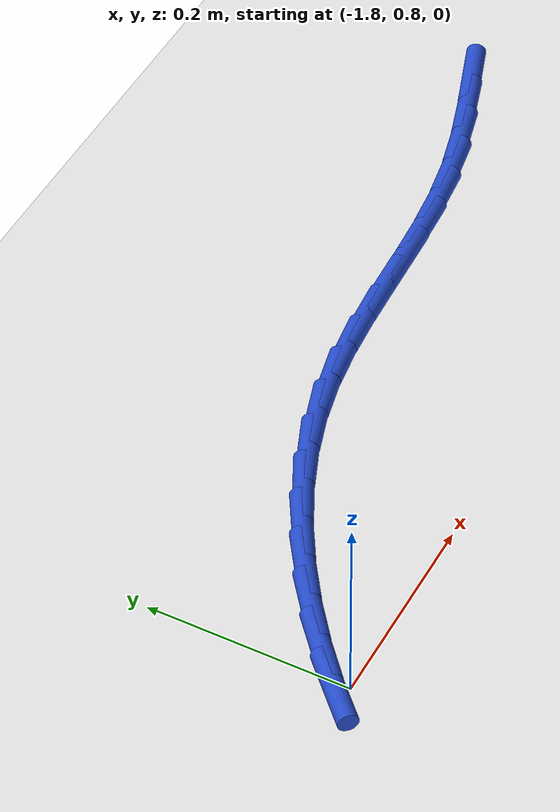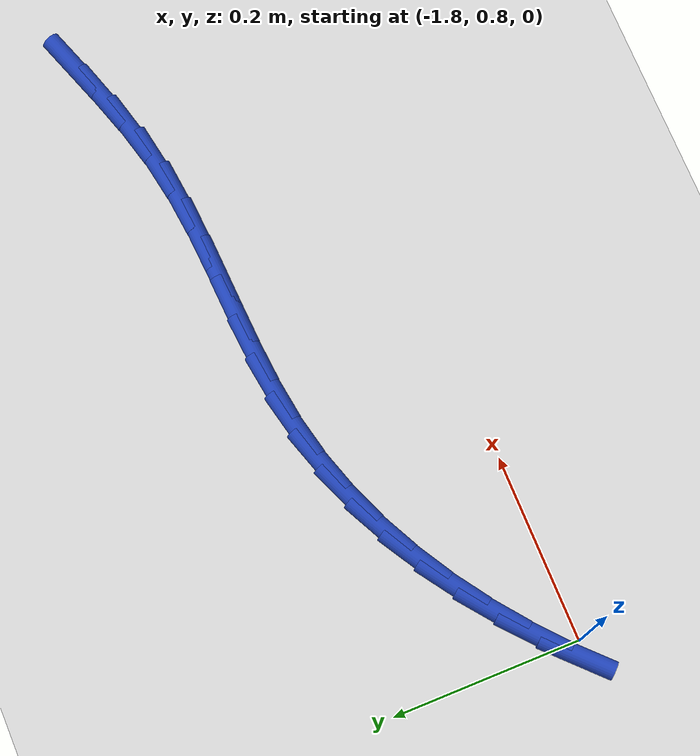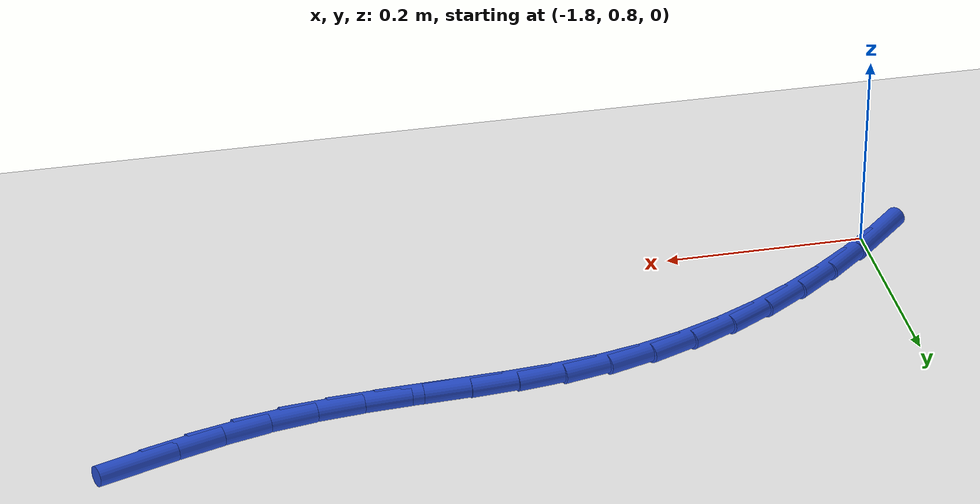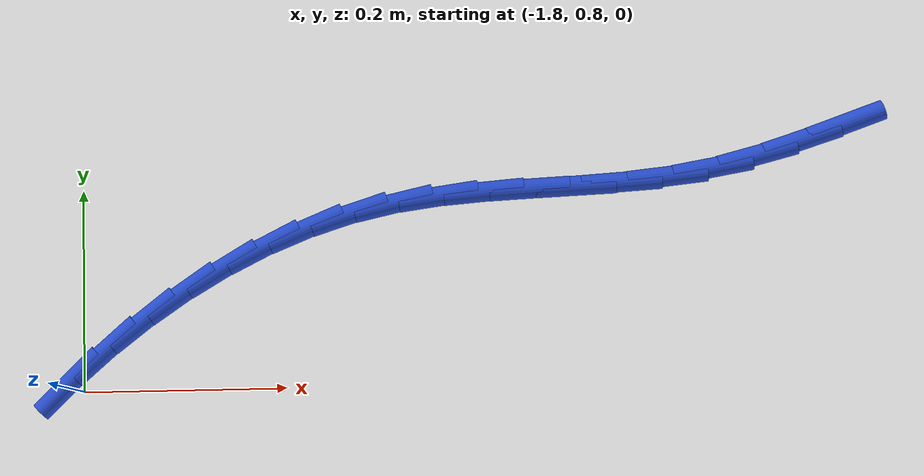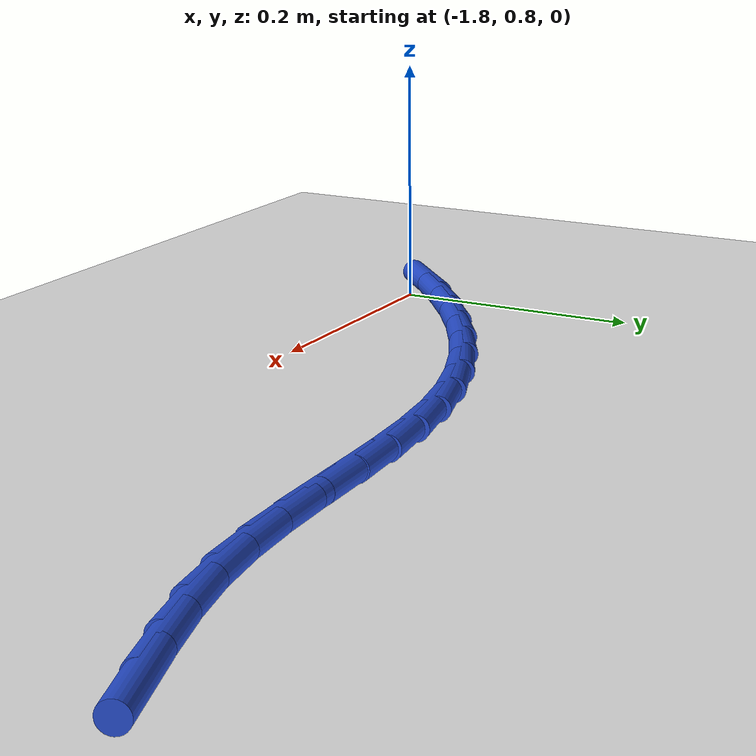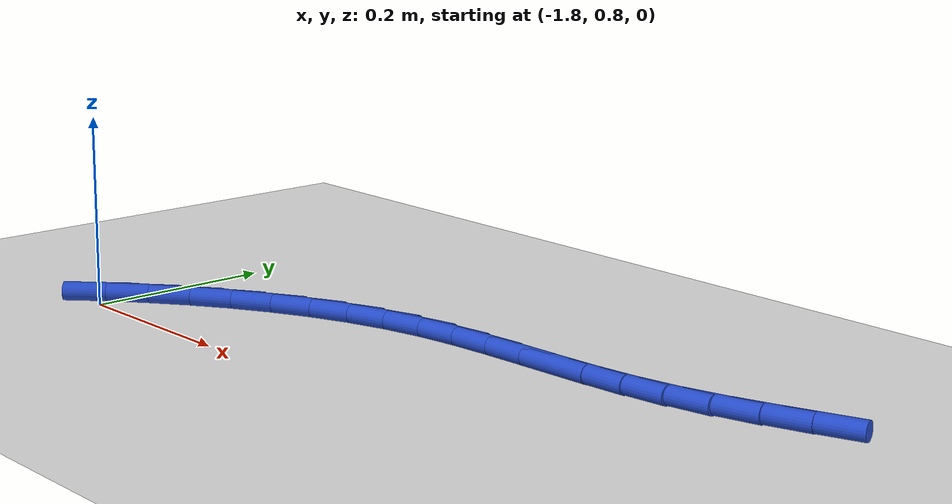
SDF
<sdf version="1.6">
 <world name="default">
  <model name="ground_plane">
   <static>1</static>
   <link name="link">
    <collision name="collision">
     <geometry><plane><normal>0 0 1</normal><size>100 100</size></plane></geometry>
     <surface><friction><ode><mu>100</mu><mu2>50</mu2></ode></friction></surface>
    </collision>
    <visual name="visual">
     <cast_shadows>0</cast_shadows>
     <geometry><plane><normal>0 0 1</normal><size>100 100</size></plane></geometry>
     <material>
      <script><uri>file://media/materials/scripts/gazebo.material</uri><name>Gazebo/WhiteGlow</name></script>
     </material>
    </visual>
   </link>
  </model>
  <model name="line">
   <link name="link_37">
    <pose>-1.041204548063207 1.050059039517797 0.01 0 1.57 0.3372581123567718</pose>
    <collision name="collision">
     <geometry><cylinder><radius>0.01</radius><length>0.08</length></cylinder></geometry>
    </collision>
    <visual name="visual">
     <material>
      <script><name>Gazebo/Blue</name><uri>file://media/materials/scripts/gazebo.material</uri></script>
     </material>
     <geometry><cylinder><radius>0.01</radius><length>0.08</length></cylinder></geometry>
    </visual>
   </link>
   <link name="link_38">
    <pose>-1.085456536671253 1.0345418637569912 0.01 0 1.57 0.30705377053504007</pose>
    <collision name="collision">
     <geometry><cylinder><radius>0.01</radius><length>0.08</length></cylinder></geometry>
    </collision>
    <visual name="visual">
     <material>
      <script><name>Gazebo/Blue</name><uri>file://media/materials/scripts/gazebo.material</uri></script>
     </material>
     <geometry><cylinder><radius>0.01</radius><length>0.08</length></cylinder></geometry>
    </visual>
   </link>
   <link name="link_39">
    <pose>-1.1300504110473726 1.0204019481049733 0.01 0 1.57 0.24959189542586935</pose>
    <collision name="collision">
     <geometry><cylinder><radius>0.01</radius><length>0.08</length></cylinder></geometry>
    </collision>
    <visual name="visual">
     <material>
      <script><name>Gazebo/Blue</name><uri>file://media/materials/scripts/gazebo.material</uri></script>
     </material>
     <geometry><cylinder><radius>0.01</radius><length>0.08</length></cylinder></geometry>
    </visual>
   </link>
   <link name="link_40">
    <pose>-1.1749925043032832 1.008945882537356 0.01 0 1.57 0.1698947916991378</pose>
    <collision name="collision">
     <geometry><cylinder><radius>0.01</radius><length>0.08</length></cylinder></geometry>
    </collision>
    <visual name="visual">
     <material>
      <script><name>Gazebo/Blue</name><uri>file://media/materials/scripts/gazebo.material</uri></script>
     </material>
     <geometry><cylinder><radius>0.01</radius><length>0.08</length></cylinder></geometry>
    </visual>
   </link>
   <link name="link_41">
    <pose>-1.220270551940147 1.0011785006691818 0.01 0 1.57 0.10242214928753134</pose>
    <collision name="collision">
     <geometry><cylinder><radius>0.01</radius><length>0.08</length></cylinder></geometry>
    </collision>
    <visual name="visual">
     <material>
      <script><name>Gazebo/Blue</name><uri>file://media/materials/scripts/gazebo.material</uri></script>
     </material>
     <geometry><cylinder><radius>0.01</radius><length>0.08</length></cylinder></geometry>
    </visual>
   </link>
   <link name="link_42">
    <pose>-1.2657734940110714 0.9965016261610742 0.01 0 1.57 0.059485050405694025</pose>
    <collision name="collision">
     <geometry><cylinder><radius>0.01</radius><length>0.08</length></cylinder></geometry>
    </collision>
    <visual name="visual">
     <material>
      <script><name>Gazebo/Blue</name><uri>file://media/materials/scripts/gazebo.material</uri></script>
     </material>
     <geometry><cylinder><radius>0.01</radius><length>0.08</length></cylinder></geometry>
    </visual>
   </link>
   <link name="link_43">
    <pose>-1.31135759174807 0.9937868510026211 0.01 0 1.57 0.041306899622353586</pose>
    <collision name="collision">
     <geometry><cylinder><radius>0.01</radius><length>0.08</length></cylinder></geometry>
    </collision>
    <visual name="visual">
     <material>
      <script><name>Gazebo/Blue</name><uri>file://media/materials/scripts/gazebo.material</uri></script>
     </material>
     <geometry><cylinder><radius>0.01</radius><length>0.08</length></cylinder></geometry>
    </visual>
   </link>
   <link name="link_44">
    <pose>-1.356879085543031 0.991905429041048 0.01 0 1.57 0.04800036609198862</pose>
    <collision name="collision">
     <geometry><cylinder><radius>0.01</radius><length>0.08</length></cylinder></geometry>
    </collision>
    <visual name="visual">
     <material>
      <script><name>Gazebo/Blue</name><uri>file://media/materials/scripts/gazebo.material</uri></script>
     </material>
     <geometry><cylinder><radius>0.01</radius><length>0.08</length></cylinder></geometry>
    </visual>
   </link>
   <link name="link_45">
    <pose>-1.4021942157878446 0.989728614123581 0.01 0 1.57 0.07991292943495168</pose>
    <collision name="collision">
     <geometry><cylinder><radius>0.01</radius><length>0.08</length></cylinder></geometry>
    </collision>
    <visual name="visual">
     <material>
      <script><name>Gazebo/Blue</name><uri>file://media/materials/scripts/gazebo.material</uri></script>
     </material>
     <geometry><cylinder><radius>0.01</radius><length>0.08</length></cylinder></geometry>
    </visual>
   </link>
   <link name="link_46">
    <pose>-1.4471592228743986 0.9861276600974459 0.01 0 1.57 0.13750507843735582</pose>
    <collision name="collision">
     <geometry><cylinder><radius>0.01</radius><length>0.08</length></cylinder></geometry>
    </collision>
    <visual name="visual">
     <material>
      <script><name>Gazebo/Blue</name><uri>file://media/materials/scripts/gazebo.material</uri></script>
     </material>
     <geometry><cylinder><radius>0.01</radius><length>0.08</length></cylinder></geometry>
    </visual>
   </link>
   <link name="link_47">
    <pose>-1.4916303471945824 0.9799738208098688 0.01 0 1.57 0.21924860258075093</pose>
    <collision name="collision">
     <geometry><cylinder><radius>0.01</radius><length>0.08</length></cylinder></geometry>
    </collision>
    <visual name="visual">
     <material>
      <script><name>Gazebo/Blue</name><uri>file://media/materials/scripts/gazebo.material</uri></script>
     </material>
     <geometry><cylinder><radius>0.01</radius><length>0.08</length></cylinder></geometry>
    </visual>
   </link>
   <link name="link_48">
    <pose>-1.5354640097102266 0.9702063402634762 0.01 0 1.57 0.3067010706615668</pose>
    <collision name="collision">
     <geometry><cylinder><radius>0.01</radius><length>0.08</length></cylinder></geometry>
    </collision>
    <visual name="visual">
     <material>
      <script><name>Gazebo/Blue</name><uri>file://media/materials/scripts/gazebo.material</uri></script>
     </material>
     <geometry><cylinder><radius>0.01</radius><length>0.08</length></cylinder></geometry>
    </visual>
   </link>
   <link name="link_49">
    <pose>-1.5785187738280961 0.9565711590953223 0.01 0 1.57 0.38814090605224666</pose>
    <collision name="collision">
     <geometry><cylinder><radius>0.01</radius><length>0.08</length></cylinder></geometry>
    </collision>
    <visual name="visual">
     <material>
      <script><name>Gazebo/Blue</name><uri>file://media/materials/scripts/gazebo.material</uri></script>
     </material>
     <geometry><cylinder><radius>0.01</radius><length>0.08</length></cylinder></geometry>
    </visual>
   </link>
   <link name="link_50">
    <pose>-1.6206546060291915 0.939342518690705 0.01 0 1.57 0.46365244157971647</pose>
    <collision name="collision">
     <geometry><cylinder><radius>0.01</radius><length>0.08</length></cylinder></geometry>
    </collision>
    <visual name="visual">
     <material>
      <script><name>Gazebo/Blue</name><uri>file://media/materials/scripts/gazebo.material</uri></script>
     </material>
     <geometry><cylinder><radius>0.01</radius><length>0.08</length></cylinder></geometry>
    </visual>
   </link>
   <link name="link_51">
    <pose>-1.6617314971339991 0.9188038250035545 0.01 0 1.57 0.5337286970925009</pose>
    <collision name="collision">
     <geometry><cylinder><radius>0.01</radius><length>0.08</length></cylinder></geometry>
    </collision>
    <visual name="visual">
     <material>
      <script><name>Gazebo/Blue</name><uri>file://media/materials/scripts/gazebo.material</uri></script>
     </material>
     <geometry><cylinder><radius>0.01</radius><length>0.08</length></cylinder></geometry>
    </visual>
   </link>
   <link name="link_52">
    <pose>-1.701609437963006 0.8952384839878004 0.01 0 1.57 0.5989855732832398</pose>
    <collision name="collision">
     <geometry><cylinder><radius>0.01</radius><length>0.08</length></cylinder></geometry>
    </collision>
    <visual name="visual">
     <material>
      <script><name>Gazebo/Blue</name><uri>file://media/materials/scripts/gazebo.material</uri></script>
     </material>
     <geometry><cylinder><radius>0.01</radius><length>0.08</length></cylinder></geometry>
    </visual>
   </link>
   <link name="link_53">
    <pose>-1.740148419336701 0.8689299015973732 0.01 0 1.57 0.6601003556676743</pose>
    <collision name="collision">
     <geometry><cylinder><radius>0.01</radius><length>0.08</length></cylinder></geometry>
    </collision>
    <visual name="visual">
     <material>
      <script><name>Gazebo/Blue</name><uri>file://media/materials/scripts/gazebo.material</uri></script>
     </material>
     <geometry><cylinder><radius>0.01</radius><length>0.08</length></cylinder></geometry>
    </visual>
   </link>
   <link name="link_54">
    <pose>-1.7772084320755717 0.840161483786202 0.01 0 1.57 0.717773368047106</pose>
    <collision name="collision">
     <geometry><cylinder><radius>0.01</radius><length>0.08</length></cylinder></geometry>
    </collision>
    <visual name="visual">
     <material>
      <script><name>Gazebo/Blue</name><uri>file://media/materials/scripts/gazebo.material</uri></script>
     </material>
     <geometry><cylinder><radius>0.01</radius><length>0.08</length></cylinder></geometry>
    </visual>
   </link>
   <link name="link_55">
    <pose>-1.812649467000106 0.8092166365082181 0.01 0 1.57 0.7727082527381874</pose>
    <collision name="collision">
     <geometry><cylinder><radius>0.01</radius><length>0.08</length></cylinder></geometry>
    </collision>
    <visual name="visual">
     <material>
      <script><name>Gazebo/Blue</name><uri>file://media/materials/scripts/gazebo.material</uri></script>
     </material>
     <geometry><cylinder><radius>0.01</radius><length>0.08</length></cylinder></geometry>
    </visual>
   </link>
  </model>
 </world>
</sdf>
